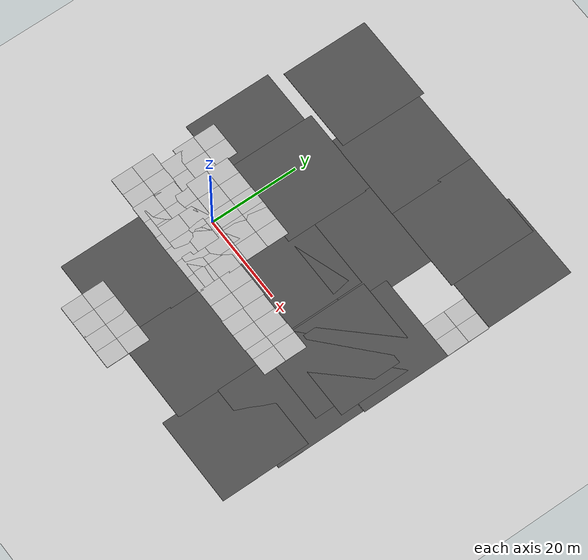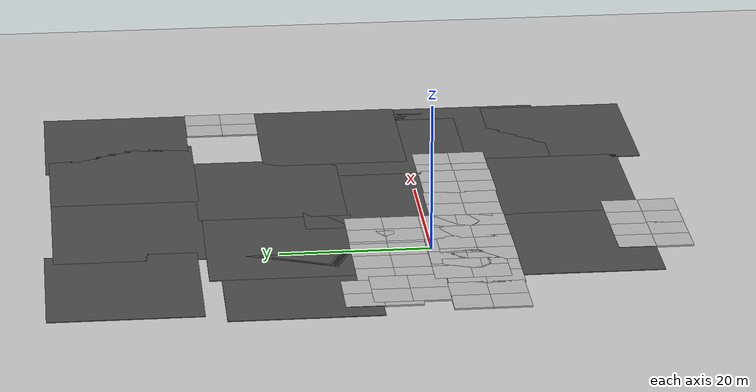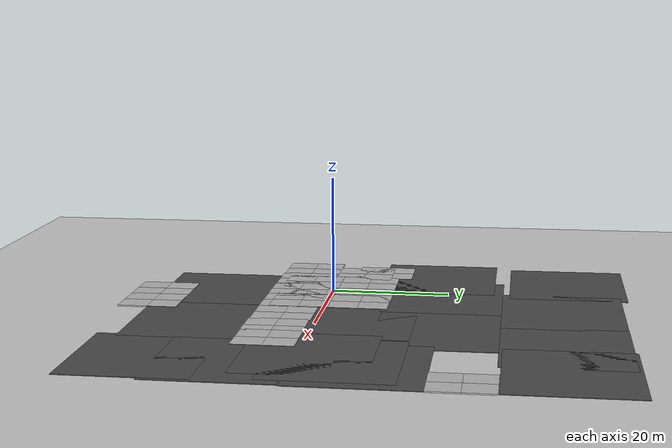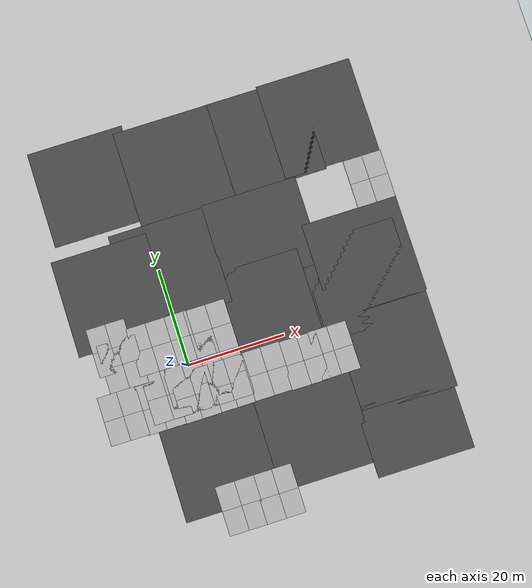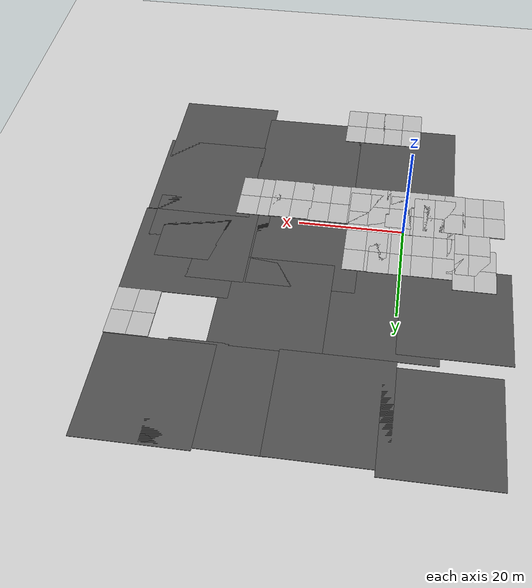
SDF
<sdf version="1.6">
 <world name="default">
  <model name="ground_plane">
   <static>1</static>
   <link name="link">
    <collision name="collision">
     <geometry><plane><normal>0 0 1</normal><size>100 100</size></plane></geometry>
     <surface><friction><ode><mu>100</mu><mu2>50</mu2></ode></friction></surface>
    </collision>
    <visual name="visual">
     <cast_shadows>0</cast_shadows>
     <geometry><plane><normal>0 0 1</normal><size>100 100</size></plane></geometry>
     <material>
      <script><uri>file://media/materials/scripts/gazebo.material</uri><name>Gazebo/Grey</name></script>
     </material>
    </visual>
   </link>
  </model>
  <model name="mud_box">
   <static>1</static>
   <link name="link">
    <collision name="collision"><geometry><box><size>8 10 0.2</size></box></geometry></collision>
    <visual name="visual_1">
     <pose>-2 2.5 0 0 -0 0</pose>
     <cast_shadows>0</cast_shadows>
     <geometry><box><size>4 5 0.2</size></box></geometry>
     <material>
      <script>
       <uri>model://mud_box/materials/scripts</uri>
       <uri>model://mud_box/materials/textures</uri>
       <name>vrc/mud</name>
      </script>
     </material>
    </visual>
    <visual name="visual_2">
     <pose>2 2.5 0 0 -0 0</pose>
     <cast_shadows>0</cast_shadows>
     <geometry><box><size>4 5 0.2</size></box></geometry>
     <material>
      <script>
       <uri>model://mud_box/materials/scripts</uri>
       <uri>model://mud_box/materials/textures</uri>
       <name>vrc/mud</name>
      </script>
     </material>
    </visual>
    <visual name="visual_3">
     <pose>2 -2.5 0 0 -0 0</pose>
     <cast_shadows>0</cast_shadows>
     <geometry><box><size>4 5 0.2</size></box></geometry>
     <material>
      <script>
       <uri>model://mud_box/materials/scripts</uri>
       <uri>model://mud_box/materials/textures</uri>
       <name>vrc/mud</name>
      </script>
     </material>
    </visual>
    <visual name="visual_4">
     <pose>-2 -2.5 0 0 -0 0</pose>
     <cast_shadows>0</cast_shadows>
     <geometry><box><size>4 5 0.2</size></box></geometry>
     <material>
      <script>
       <uri>model://mud_box/materials/scripts</uri>
       <uri>model://mud_box/materials/textures</uri>
       <name>vrc/mud</name>
      </script>
     </material>
    </visual>
   </link>
   <pose>6.67494 -4.37805 0 0 -0 0</pose>
  </model>
  <model name="mud_box_0">
   <static>1</static>
   <link name="link">
    <collision name="collision"><geometry><box><size>8 10 0.2</size></box></geometry></collision>
    <visual name="visual_1">
     <pose>-2 2.5 0 0 -0 0</pose>
     <cast_shadows>0</cast_shadows>
     <geometry><box><size>4 5 0.2</size></box></geometry>
     <material>
      <script>
       <uri>model://mud_box/materials/scripts</uri>
       <uri>model://mud_box/materials/textures</uri>
       <name>vrc/mud</name>
      </script>
     </material>
    </visual>
    <visual name="visual_2">
     <pose>2 2.5 0 0 -0 0</pose>
     <cast_shadows>0</cast_shadows>
     <geometry><box><size>4 5 0.2</size></box></geometry>
     <material>
      <script>
       <uri>model://mud_box/materials/scripts</uri>
       <uri>model://mud_box/materials/textures</uri>
       <name>vrc/mud</name>
      </script>
     </material>
    </visual>
    <visual name="visual_3">
     <pose>2 -2.5 0 0 -0 0</pose>
     <cast_shadows>0</cast_shadows>
     <geometry><box><size>4 5 0.2</size></box></geometry>
     <material>
      <script>
       <uri>model://mud_box/materials/scripts</uri>
       <uri>model://mud_box/materials/textures</uri>
       <name>vrc/mud</name>
      </script>
     </material>
    </visual>
    <visual name="visual_4">
     <pose>-2 -2.5 0 0 -0 0</pose>
     <cast_shadows>0</cast_shadows>
     <geometry><box><size>4 5 0.2</size></box></geometry>
     <material>
      <script>
       <uri>model://mud_box/materials/scripts</uri>
       <uri>model://mud_box/materials/textures</uri>
       <name>vrc/mud</name>
      </script>
     </material>
    </visual>
   </link>
   <pose>-1.31413 -4.41998 0 0 -0 0</pose>
  </model>
  <model name="mud_box_1">
   <static>1</static>
   <link name="link">
    <collision name="collision"><geometry><box><size>8 10 0.2</size></box></geometry></collision>
    <visual name="visual_1">
     <pose>-2 2.5 0 0 -0 0</pose>
     <cast_shadows>0</cast_shadows>
     <geometry><box><size>4 5 0.2</size></box></geometry>
     <material>
      <script>
       <uri>model://mud_box/materials/scripts</uri>
       <uri>model://mud_box/materials/textures</uri>
       <name>vrc/mud</name>
      </script>
     </material>
    </visual>
    <visual name="visual_2">
     <pose>2 2.5 0 0 -0 0</pose>
     <cast_shadows>0</cast_shadows>
     <geometry><box><size>4 5 0.2</size></box></geometry>
     <material>
      <script>
       <uri>model://mud_box/materials/scripts</uri>
       <uri>model://mud_box/materials/textures</uri>
       <name>vrc/mud</name>
      </script>
     </material>
    </visual>
    <visual name="visual_3">
     <pose>2 -2.5 0 0 -0 0</pose>
     <cast_shadows>0</cast_shadows>
     <geometry><box><size>4 5 0.2</size></box></geometry>
     <material>
      <script>
       <uri>model://mud_box/materials/scripts</uri>
       <uri>model://mud_box/materials/textures</uri>
       <name>vrc/mud</name>
      </script>
     </material>
    </visual>
    <visual name="visual_4">
     <pose>-2 -2.5 0 0 -0 0</pose>
     <cast_shadows>0</cast_shadows>
     <geometry><box><size>4 5 0.2</size></box></geometry>
     <material>
      <script>
       <uri>model://mud_box/materials/scripts</uri>
       <uri>model://mud_box/materials/textures</uri>
       <name>vrc/mud</name>
      </script>
     </material>
    </visual>
   </link>
   <pose>-5.88435 -4.38735 0 0 -0 0</pose>
  </model>
  <model name="mud_box_2">
   <static>1</static>
   <link name="link">
    <collision name="collision"><geometry><box><size>8 10 0.2</size></box></geometry></collision>
    <visual name="visual_1">
     <pose>-2 2.5 0 0 -0 0</pose>
     <cast_shadows>0</cast_shadows>
     <geometry><box><size>4 5 0.2</size></box></geometry>
     <material>
      <script>
       <uri>model://mud_box/materials/scripts</uri>
       <uri>model://mud_box/materials/textures</uri>
       <name>vrc/mud</name>
      </script>
     </material>
    </visual>
    <visual name="visual_2">
     <pose>2 2.5 0 0 -0 0</pose>
     <cast_shadows>0</cast_shadows>
     <geometry><box><size>4 5 0.2</size></box></geometry>
     <material>
      <script>
       <uri>model://mud_box/materials/scripts</uri>
       <uri>model://mud_box/materials/textures</uri>
       <name>vrc/mud</name>
      </script>
     </material>
    </visual>
    <visual name="visual_3">
     <pose>2 -2.5 0 0 -0 0</pose>
     <cast_shadows>0</cast_shadows>
     <geometry><box><size>4 5 0.2</size></box></geometry>
     <material>
      <script>
       <uri>model://mud_box/materials/scripts</uri>
       <uri>model://mud_box/materials/textures</uri>
       <name>vrc/mud</name>
      </script>
     </material>
    </visual>
    <visual name="visual_4">
     <pose>-2 -2.5 0 0 -0 0</pose>
     <cast_shadows>0</cast_shadows>
     <geometry><box><size>4 5 0.2</size></box></geometry>
     <material>
      <script>
       <uri>model://mud_box/materials/scripts</uri>
       <uri>model://mud_box/materials/textures</uri>
       <name>vrc/mud</name>
      </script>
     </material>
    </visual>
   </link>
   <pose>-5.85929 5.62111 0 0 -0 0</pose>
  </model>
  <model name="mud_box_3">
   <static>1</static>
   <link name="link">
    <collision name="collision"><geometry><box><size>8 10 0.2</size></box></geometry></collision>
    <visual name="visual_1">
     <pose>-2 2.5 0 0 -0 0</pose>
     <cast_shadows>0</cast_shadows>
     <geometry><box><size>4 5 0.2</size></box></geometry>
     <material>
      <script>
       <uri>model://mud_box/materials/scripts</uri>
       <uri>model://mud_box/materials/textures</uri>
       <name>vrc/mud</name>
      </script>
     </material>
    </visual>
    <visual name="visual_2">
     <pose>2 2.5 0 0 -0 0</pose>
     <cast_shadows>0</cast_shadows>
     <geometry><box><size>4 5 0.2</size></box></geometry>
     <material>
      <script>
       <uri>model://mud_box/materials/scripts</uri>
       <uri>model://mud_box/materials/textures</uri>
       <name>vrc/mud</name>
      </script>
     </material>
    </visual>
    <visual name="visual_3">
     <pose>2 -2.5 0 0 -0 0</pose>
     <cast_shadows>0</cast_shadows>
     <geometry><box><size>4 5 0.2</size></box></geometry>
     <material>
      <script>
       <uri>model://mud_box/materials/scripts</uri>
       <uri>model://mud_box/materials/textures</uri>
       <name>vrc/mud</name>
      </script>
     </material>
    </visual>
    <visual name="visual_4">
     <pose>-2 -2.5 0 0 -0 0</pose>
     <cast_shadows>0</cast_shadows>
     <geometry><box><size>4 5 0.2</size></box></geometry>
     <material>
      <script>
       <uri>model://mud_box/materials/scripts</uri>
       <uri>model://mud_box/materials/textures</uri>
       <name>vrc/mud</name>
      </script>
     </material>
    </visual>
   </link>
   <pose>2.11138 5.6492 0 0 -0 0</pose>
  </model>
  <model name="mud_box_4">
   <static>1</static>
   <link name="link">
    <collision name="collision"><geometry><box><size>8 10 0.2</size></box></geometry></collision>
    <visual name="visual_1">
     <pose>-2 2.5 0 0 -0 0</pose>
     <cast_shadows>0</cast_shadows>
     <geometry><box><size>4 5 0.2</size></box></geometry>
     <material>
      <script>
       <uri>model://mud_box/materials/scripts</uri>
       <uri>model://mud_box/materials/textures</uri>
       <name>vrc/mud</name>
      </script>
     </material>
    </visual>
    <visual name="visual_2">
     <pose>2 2.5 0 0 -0 0</pose>
     <cast_shadows>0</cast_shadows>
     <geometry><box><size>4 5 0.2</size></box></geometry>
     <material>
      <script>
       <uri>model://mud_box/materials/scripts</uri>
       <uri>model://mud_box/materials/textures</uri>
       <name>vrc/mud</name>
      </script>
     </material>
    </visual>
    <visual name="visual_3">
     <pose>2 -2.5 0 0 -0 0</pose>
     <cast_shadows>0</cast_shadows>
     <geometry><box><size>4 5 0.2</size></box></geometry>
     <material>
      <script>
       <uri>model://mud_box/materials/scripts</uri>
       <uri>model://mud_box/materials/textures</uri>
       <name>vrc/mud</name>
      </script>
     </material>
    </visual>
    <visual name="visual_4">
     <pose>-2 -2.5 0 0 -0 0</pose>
     <cast_shadows>0</cast_shadows>
     <geometry><box><size>4 5 0.2</size></box></geometry>
     <material>
      <script>
       <uri>model://mud_box/materials/scripts</uri>
       <uri>model://mud_box/materials/textures</uri>
       <name>vrc/mud</name>
      </script>
     </material>
    </visual>
   </link>
   <pose>6.7262 5.5782 0 0 -0 0</pose>
  </model>
  <model name="asphalt_plane">
   <static>1</static>
   <link name="link">
    <collision name="collision"><geometry><box><size>20 20 0.1</size></box></geometry></collision>
    <visual name="visual">
     <cast_shadows>0</cast_shadows>
     <geometry><box><size>20 20 0.1</size></box></geometry>
     <material>
      <script>
       <uri>model://asphalt_plane/materials/scripts</uri>
       <uri>model://asphalt_plane/materials/textures</uri>
       <name>vrc/asphalt</name>
      </script>
     </material>
    </visual>
   </link>
   <pose>0.46329 -19.4958 0 0 -0 0</pose>
  </model>
  <model name="asphalt_plane_1">
   <static>1</static>
   <link name="link">
    <collision name="collision"><geometry><box><size>20 20 0.1</size></box></geometry></collision>
    <visual name="visual">
     <cast_shadows>0</cast_shadows>
     <geometry><box><size>20 20 0.1</size></box></geometry>
     <material>
      <script>
       <uri>model://asphalt_plane/materials/scripts</uri>
       <uri>model://asphalt_plane/materials/textures</uri>
       <name>vrc/asphalt</name>
      </script>
     </material>
    </visual>
   </link>
   <pose>20.1586 -19.4171 0 0 -0 0</pose>
  </model>
  <model name="mud_box_2_clone_0">
   <static>1</static>
   <link name="link">
    <collision name="collision"><geometry><box><size>8 10 0.2</size></box></geometry></collision>
    <visual name="visual_1">
     <pose>-2 2.5 0 0 -0 0</pose>
     <cast_shadows>0</cast_shadows>
     <geometry><box><size>4 5 0.2</size></box></geometry>
     <material>
      <script>
       <uri>model://mud_box/materials/scripts</uri>
       <uri>model://mud_box/materials/textures</uri>
       <name>vrc/mud</name>
      </script>
     </material>
    </visual>
    <visual name="visual_2">
     <pose>2 2.5 0 0 -0 0</pose>
     <cast_shadows>0</cast_shadows>
     <geometry><box><size>4 5 0.2</size></box></geometry>
     <material>
      <script>
       <uri>model://mud_box/materials/scripts</uri>
       <uri>model://mud_box/materials/textures</uri>
       <name>vrc/mud</name>
      </script>
     </material>
    </visual>
    <visual name="visual_3">
     <pose>2 -2.5 0 0 -0 0</pose>
     <cast_shadows>0</cast_shadows>
     <geometry><box><size>4 5 0.2</size></box></geometry>
     <material>
      <script>
       <uri>model://mud_box/materials/scripts</uri>
       <uri>model://mud_box/materials/textures</uri>
       <name>vrc/mud</name>
      </script>
     </material>
    </visual>
    <visual name="visual_4">
     <pose>-2 -2.5 0 0 -0 0</pose>
     <cast_shadows>0</cast_shadows>
     <geometry><box><size>4 5 0.2</size></box></geometry>
     <material>
      <script>
       <uri>model://mud_box/materials/scripts</uri>
       <uri>model://mud_box/materials/textures</uri>
       <name>vrc/mud</name>
      </script>
     </material>
    </visual>
   </link>
   <pose>1.80119 -29.5516 0 0 -0 0</pose>
  </model>
  <model name="mud_box_2_clone_1">
   <static>1</static>
   <link name="link">
    <collision name="collision"><geometry><box><size>8 10 0.2</size></box></geometry></collision>
    <visual name="visual_1">
     <pose>-2 2.5 0 0 -0 0</pose>
     <cast_shadows>0</cast_shadows>
     <geometry><box><size>4 5 0.2</size></box></geometry>
     <material>
      <script>
       <uri>model://mud_box/materials/scripts</uri>
       <uri>model://mud_box/materials/textures</uri>
       <name>vrc/mud</name>
      </script>
     </material>
    </visual>
    <visual name="visual_2">
     <pose>2 2.5 0 0 -0 0</pose>
     <cast_shadows>0</cast_shadows>
     <geometry><box><size>4 5 0.2</size></box></geometry>
     <material>
      <script>
       <uri>model://mud_box/materials/scripts</uri>
       <uri>model://mud_box/materials/textures</uri>
       <name>vrc/mud</name>
      </script>
     </material>
    </visual>
    <visual name="visual_3">
     <pose>2 -2.5 0 0 -0 0</pose>
     <cast_shadows>0</cast_shadows>
     <geometry><box><size>4 5 0.2</size></box></geometry>
     <material>
      <script>
       <uri>model://mud_box/materials/scripts</uri>
       <uri>model://mud_box/materials/textures</uri>
       <name>vrc/mud</name>
      </script>
     </material>
    </visual>
    <visual name="visual_4">
     <pose>-2 -2.5 0 0 -0 0</pose>
     <cast_shadows>0</cast_shadows>
     <geometry><box><size>4 5 0.2</size></box></geometry>
     <material>
      <script>
       <uri>model://mud_box/materials/scripts</uri>
       <uri>model://mud_box/materials/textures</uri>
       <name>vrc/mud</name>
      </script>
     </material>
    </visual>
   </link>
   <pose>9.52834 -29.56 0 0 -0 0</pose>
  </model>
  <model name="mud_box_2_clone_9">
   <static>1</static>
   <link name="link">
    <collision name="collision"><geometry><box><size>8 10 0.2</size></box></geometry></collision>
    <visual name="visual_1">
     <pose>-2 2.5 0 0 -0 0</pose>
     <cast_shadows>0</cast_shadows>
     <geometry><box><size>4 5 0.2</size></box></geometry>
     <material>
      <script>
       <uri>model://mud_box/materials/scripts</uri>
       <uri>model://mud_box/materials/textures</uri>
       <name>vrc/mud</name>
      </script>
     </material>
    </visual>
    <visual name="visual_2">
     <pose>2 2.5 0 0 -0 0</pose>
     <cast_shadows>0</cast_shadows>
     <geometry><box><size>4 5 0.2</size></box></geometry>
     <material>
      <script>
       <uri>model://mud_box/materials/scripts</uri>
       <uri>model://mud_box/materials/textures</uri>
       <name>vrc/mud</name>
      </script>
     </material>
    </visual>
    <visual name="visual_3">
     <pose>2 -2.5 0 0 -0 0</pose>
     <cast_shadows>0</cast_shadows>
     <geometry><box><size>4 5 0.2</size></box></geometry>
     <material>
      <script>
       <uri>model://mud_box/materials/scripts</uri>
       <uri>model://mud_box/materials/textures</uri>
       <name>vrc/mud</name>
      </script>
     </material>
    </visual>
    <visual name="visual_4">
     <pose>-2 -2.5 0 0 -0 0</pose>
     <cast_shadows>0</cast_shadows>
     <geometry><box><size>4 5 0.2</size></box></geometry>
     <material>
      <script>
       <uri>model://mud_box/materials/scripts</uri>
       <uri>model://mud_box/materials/textures</uri>
       <name>vrc/mud</name>
      </script>
     </material>
    </visual>
   </link>
   <pose>6.94055 -5.96852 0 0 -0 0</pose>
  </model>
  <model name="mud_box_2_clone_10">
   <static>1</static>
   <link name="link">
    <collision name="collision"><geometry><box><size>8 10 0.2</size></box></geometry></collision>
    <visual name="visual_1">
     <pose>-2 2.5 0 0 -0 0</pose>
     <cast_shadows>0</cast_shadows>
     <geometry><box><size>4 5 0.2</size></box></geometry>
     <material>
      <script>
       <uri>model://mud_box/materials/scripts</uri>
       <uri>model://mud_box/materials/textures</uri>
       <name>vrc/mud</name>
      </script>
     </material>
    </visual>
    <visual name="visual_2">
     <pose>2 2.5 0 0 -0 0</pose>
     <cast_shadows>0</cast_shadows>
     <geometry><box><size>4 5 0.2</size></box></geometry>
     <material>
      <script>
       <uri>model://mud_box/materials/scripts</uri>
       <uri>model://mud_box/materials/textures</uri>
       <name>vrc/mud</name>
      </script>
     </material>
    </visual>
    <visual name="visual_3">
     <pose>2 -2.5 0 0 -0 0</pose>
     <cast_shadows>0</cast_shadows>
     <geometry><box><size>4 5 0.2</size></box></geometry>
     <material>
      <script>
       <uri>model://mud_box/materials/scripts</uri>
       <uri>model://mud_box/materials/textures</uri>
       <name>vrc/mud</name>
      </script>
     </material>
    </visual>
    <visual name="visual_4">
     <pose>-2 -2.5 0 0 -0 0</pose>
     <cast_shadows>0</cast_shadows>
     <geometry><box><size>4 5 0.2</size></box></geometry>
     <material>
      <script>
       <uri>model://mud_box/materials/scripts</uri>
       <uri>model://mud_box/materials/textures</uri>
       <name>vrc/mud</name>
      </script>
     </material>
    </visual>
   </link>
   <pose>-0.426662 -6.00251 0 0 -0 0</pose>
  </model>
  <model name="mud_box_2_clone_11">
   <static>1</static>
   <link name="link">
    <collision name="collision"><geometry><box><size>8 10 0.2</size></box></geometry></collision>
    <visual name="visual_1">
     <pose>-2 2.5 0 0 -0 0</pose>
     <cast_shadows>0</cast_shadows>
     <geometry><box><size>4 5 0.2</size></box></geometry>
     <material>
      <script>
       <uri>model://mud_box/materials/scripts</uri>
       <uri>model://mud_box/materials/textures</uri>
       <name>vrc/mud</name>
      </script>
     </material>
    </visual>
    <visual name="visual_2">
     <pose>2 2.5 0 0 -0 0</pose>
     <cast_shadows>0</cast_shadows>
     <geometry><box><size>4 5 0.2</size></box></geometry>
     <material>
      <script>
       <uri>model://mud_box/materials/scripts</uri>
       <uri>model://mud_box/materials/textures</uri>
       <name>vrc/mud</name>
      </script>
     </material>
    </visual>
    <visual name="visual_3">
     <pose>2 -2.5 0 0 -0 0</pose>
     <cast_shadows>0</cast_shadows>
     <geometry><box><size>4 5 0.2</size></box></geometry>
     <material>
      <script>
       <uri>model://mud_box/materials/scripts</uri>
       <uri>model://mud_box/materials/textures</uri>
       <name>vrc/mud</name>
      </script>
     </material>
    </visual>
    <visual name="visual_4">
     <pose>-2 -2.5 0 0 -0 0</pose>
     <cast_shadows>0</cast_shadows>
     <geometry><box><size>4 5 0.2</size></box></geometry>
     <material>
      <script>
       <uri>model://mud_box/materials/scripts</uri>
       <uri>model://mud_box/materials/textures</uri>
       <name>vrc/mud</name>
      </script>
     </material>
    </visual>
   </link>
   <pose>-7.76973 -5.92616 0 0 -0 0</pose>
  </model>
  <model name="mud_box_2_clone_12">
   <static>1</static>
   <link name="link">
    <collision name="collision"><geometry><box><size>8 10 0.2</size></box></geometry></collision>
    <visual name="visual_1">
     <pose>-2 2.5 0 0 -0 0</pose>
     <cast_shadows>0</cast_shadows>
     <geometry><box><size>4 5 0.2</size></box></geometry>
     <material>
      <script>
       <uri>model://mud_box/materials/scripts</uri>
       <uri>model://mud_box/materials/textures</uri>
       <name>vrc/mud</name>
      </script>
     </material>
    </visual>
    <visual name="visual_2">
     <pose>2 2.5 0 0 -0 0</pose>
     <cast_shadows>0</cast_shadows>
     <geometry><box><size>4 5 0.2</size></box></geometry>
     <material>
      <script>
       <uri>model://mud_box/materials/scripts</uri>
       <uri>model://mud_box/materials/textures</uri>
       <name>vrc/mud</name>
      </script>
     </material>
    </visual>
    <visual name="visual_3">
     <pose>2 -2.5 0 0 -0 0</pose>
     <cast_shadows>0</cast_shadows>
     <geometry><box><size>4 5 0.2</size></box></geometry>
     <material>
      <script>
       <uri>model://mud_box/materials/scripts</uri>
       <uri>model://mud_box/materials/textures</uri>
       <name>vrc/mud</name>
      </script>
     </material>
    </visual>
    <visual name="visual_4">
     <pose>-2 -2.5 0 0 -0 0</pose>
     <cast_shadows>0</cast_shadows>
     <geometry><box><size>4 5 0.2</size></box></geometry>
     <material>
      <script>
       <uri>model://mud_box/materials/scripts</uri>
       <uri>model://mud_box/materials/textures</uri>
       <name>vrc/mud</name>
      </script>
     </material>
    </visual>
   </link>
   <pose>14.6148 -5.9147 0 0 -0 0</pose>
  </model>
  <model name="mud_box_2_clone_13">
   <static>1</static>
   <link name="link">
    <collision name="collision"><geometry><box><size>8 10 0.2</size></box></geometry></collision>
    <visual name="visual_1">
     <pose>-2 2.5 0 0 -0 0</pose>
     <cast_shadows>0</cast_shadows>
     <geometry><box><size>4 5 0.2</size></box></geometry>
     <material>
      <script>
       <uri>model://mud_box/materials/scripts</uri>
       <uri>model://mud_box/materials/textures</uri>
       <name>vrc/mud</name>
      </script>
     </material>
    </visual>
    <visual name="visual_2">
     <pose>2 2.5 0 0 -0 0</pose>
     <cast_shadows>0</cast_shadows>
     <geometry><box><size>4 5 0.2</size></box></geometry>
     <material>
      <script>
       <uri>model://mud_box/materials/scripts</uri>
       <uri>model://mud_box/materials/textures</uri>
       <name>vrc/mud</name>
      </script>
     </material>
    </visual>
    <visual name="visual_3">
     <pose>2 -2.5 0 0 -0 0</pose>
     <cast_shadows>0</cast_shadows>
     <geometry><box><size>4 5 0.2</size></box></geometry>
     <material>
      <script>
       <uri>model://mud_box/materials/scripts</uri>
       <uri>model://mud_box/materials/textures</uri>
       <name>vrc/mud</name>
      </script>
     </material>
    </visual>
    <visual name="visual_4">
     <pose>-2 -2.5 0 0 -0 0</pose>
     <cast_shadows>0</cast_shadows>
     <geometry><box><size>4 5 0.2</size></box></geometry>
     <material>
      <script>
       <uri>model://mud_box/materials/scripts</uri>
       <uri>model://mud_box/materials/textures</uri>
       <name>vrc/mud</name>
      </script>
     </material>
    </visual>
   </link>
   <pose>22.2618 -6.07135 0 0 -0 0</pose>
  </model>
  <model name="mud_box_2_clone_14">
   <static>1</static>
   <link name="link">
    <collision name="collision"><geometry><box><size>8 10 0.2</size></box></geometry></collision>
    <visual name="visual_1">
     <pose>-2 2.5 0 0 -0 0</pose>
     <cast_shadows>0</cast_shadows>
     <geometry><box><size>4 5 0.2</size></box></geometry>
     <material>
      <script>
       <uri>model://mud_box/materials/scripts</uri>
       <uri>model://mud_box/materials/textures</uri>
       <name>vrc/mud</name>
      </script>
     </material>
    </visual>
    <visual name="visual_2">
     <pose>2 2.5 0 0 -0 0</pose>
     <cast_shadows>0</cast_shadows>
     <geometry><box><size>4 5 0.2</size></box></geometry>
     <material>
      <script>
       <uri>model://mud_box/materials/scripts</uri>
       <uri>model://mud_box/materials/textures</uri>
       <name>vrc/mud</name>
      </script>
     </material>
    </visual>
    <visual name="visual_3">
     <pose>2 -2.5 0 0 -0 0</pose>
     <cast_shadows>0</cast_shadows>
     <geometry><box><size>4 5 0.2</size></box></geometry>
     <material>
      <script>
       <uri>model://mud_box/materials/scripts</uri>
       <uri>model://mud_box/materials/textures</uri>
       <name>vrc/mud</name>
      </script>
     </material>
    </visual>
    <visual name="visual_4">
     <pose>-2 -2.5 0 0 -0 0</pose>
     <cast_shadows>0</cast_shadows>
     <geometry><box><size>4 5 0.2</size></box></geometry>
     <material>
      <script>
       <uri>model://mud_box/materials/scripts</uri>
       <uri>model://mud_box/materials/textures</uri>
       <name>vrc/mud</name>
      </script>
     </material>
    </visual>
   </link>
   <pose>28.6266 -5.9653 0 0 -0 0</pose>
  </model>
  <model name="mud_box_2_clone_15">
   <static>1</static>
   <link name="link">
    <collision name="collision"><geometry><box><size>8 10 0.2</size></box></geometry></collision>
    <visual name="visual_1">
     <pose>-2 2.5 0 0 -0 0</pose>
     <cast_shadows>0</cast_shadows>
     <geometry><box><size>4 5 0.2</size></box></geometry>
     <material>
      <script>
       <uri>model://mud_box/materials/scripts</uri>
       <uri>model://mud_box/materials/textures</uri>
       <name>vrc/mud</name>
      </script>
     </material>
    </visual>
    <visual name="visual_2">
     <pose>2 2.5 0 0 -0 0</pose>
     <cast_shadows>0</cast_shadows>
     <geometry><box><size>4 5 0.2</size></box></geometry>
     <material>
      <script>
       <uri>model://mud_box/materials/scripts</uri>
       <uri>model://mud_box/materials/textures</uri>
       <name>vrc/mud</name>
      </script>
     </material>
    </visual>
    <visual name="visual_3">
     <pose>2 -2.5 0 0 -0 0</pose>
     <cast_shadows>0</cast_shadows>
     <geometry><box><size>4 5 0.2</size></box></geometry>
     <material>
      <script>
       <uri>model://mud_box/materials/scripts</uri>
       <uri>model://mud_box/materials/textures</uri>
       <name>vrc/mud</name>
      </script>
     </material>
    </visual>
    <visual name="visual_4">
     <pose>-2 -2.5 0 0 -0 0</pose>
     <cast_shadows>0</cast_shadows>
     <geometry><box><size>4 5 0.2</size></box></geometry>
     <material>
      <script>
       <uri>model://mud_box/materials/scripts</uri>
       <uri>model://mud_box/materials/textures</uri>
       <name>vrc/mud</name>
      </script>
     </material>
    </visual>
   </link>
   <pose>-15.3121 -5.76558 0 0 -0 0</pose>
  </model>
  <model name="asphalt_plane_1_clone">
   <static>1</static>
   <link name="link">
    <collision name="collision"><geometry><box><size>20 20 0.1</size></box></geometry></collision>
    <visual name="visual">
     <cast_shadows>0</cast_shadows>
     <geometry><box><size>20 20 0.1</size></box></geometry>
     <material>
      <script>
       <uri>model://asphalt_plane/materials/scripts</uri>
       <uri>model://asphalt_plane/materials/textures</uri>
       <name>vrc/asphalt</name>
      </script>
     </material>
    </visual>
   </link>
   <pose>39.2415 -22.6402 0 0 -0 0</pose>
  </model>
  <model name="asphalt_plane_1_clone_0">
   <static>1</static>
   <link name="link">
    <collision name="collision"><geometry><box><size>20 20 0.1</size></box></geometry></collision>
    <visual name="visual">
     <cast_shadows>0</cast_shadows>
     <geometry><box><size>20 20 0.1</size></box></geometry>
     <material>
      <script>
       <uri>model://asphalt_plane/materials/scripts</uri>
       <uri>model://asphalt_plane/materials/textures</uri>
       <name>vrc/asphalt</name>
      </script>
     </material>
    </visual>
   </link>
   <pose>39.9143 -10.1366 0 0 -0 0</pose>
  </model>
  <model name="mud_box_5_clone_4_clone_0">
   <static>1</static>
   <link name="link">
    <collision name="collision"><geometry><box><size>8 10 0.2</size></box></geometry></collision>
    <visual name="visual_1">
     <pose>-2 2.5 0 0 -0 0</pose>
     <cast_shadows>0</cast_shadows>
     <geometry><box><size>4 5 0.2</size></box></geometry>
     <material>
      <script>
       <uri>model://mud_box/materials/scripts</uri>
       <uri>model://mud_box/materials/textures</uri>
       <name>vrc/mud</name>
      </script>
     </material>
    </visual>
    <visual name="visual_2">
     <pose>2 2.5 0 0 -0 0</pose>
     <cast_shadows>0</cast_shadows>
     <geometry><box><size>4 5 0.2</size></box></geometry>
     <material>
      <script>
       <uri>model://mud_box/materials/scripts</uri>
       <uri>model://mud_box/materials/textures</uri>
       <name>vrc/mud</name>
      </script>
     </material>
    </visual>
    <visual name="visual_3">
     <pose>2 -2.5 0 0 -0 0</pose>
     <cast_shadows>0</cast_shadows>
     <geometry><box><size>4 5 0.2</size></box></geometry>
     <material>
      <script>
       <uri>model://mud_box/materials/scripts</uri>
       <uri>model://mud_box/materials/textures</uri>
       <name>vrc/mud</name>
      </script>
     </material>
    </visual>
    <visual name="visual_4">
     <pose>-2 -2.5 0 0 -0 0</pose>
     <cast_shadows>0</cast_shadows>
     <geometry><box><size>4 5 0.2</size></box></geometry>
     <material>
      <script>
       <uri>model://mud_box/materials/scripts</uri>
       <uri>model://mud_box/materials/textures</uri>
       <name>vrc/mud</name>
      </script>
     </material>
    </visual>
   </link>
   <pose>-12.4812 4.1478 0 0 -0 0</pose>
  </model>
  <model name="mud_box_5_clone_4_clone_1">
   <static>1</static>
   <link name="link">
    <collision name="collision"><geometry><box><size>8 10 0.2</size></box></geometry></collision>
    <visual name="visual_1">
     <pose>-2 2.5 0 0 -0 0</pose>
     <cast_shadows>0</cast_shadows>
     <geometry><box><size>4 5 0.2</size></box></geometry>
     <material>
      <script>
       <uri>model://mud_box/materials/scripts</uri>
       <uri>model://mud_box/materials/textures</uri>
       <name>vrc/mud</name>
      </script>
     </material>
    </visual>
    <visual name="visual_2">
     <pose>2 2.5 0 0 -0 0</pose>
     <cast_shadows>0</cast_shadows>
     <geometry><box><size>4 5 0.2</size></box></geometry>
     <material>
      <script>
       <uri>model://mud_box/materials/scripts</uri>
       <uri>model://mud_box/materials/textures</uri>
       <name>vrc/mud</name>
      </script>
     </material>
    </visual>
    <visual name="visual_3">
     <pose>2 -2.5 0 0 -0 0</pose>
     <cast_shadows>0</cast_shadows>
     <geometry><box><size>4 5 0.2</size></box></geometry>
     <material>
      <script>
       <uri>model://mud_box/materials/scripts</uri>
       <uri>model://mud_box/materials/textures</uri>
       <name>vrc/mud</name>
      </script>
     </material>
    </visual>
    <visual name="visual_4">
     <pose>-2 -2.5 0 0 -0 0</pose>
     <cast_shadows>0</cast_shadows>
     <geometry><box><size>4 5 0.2</size></box></geometry>
     <material>
      <script>
       <uri>model://mud_box/materials/scripts</uri>
       <uri>model://mud_box/materials/textures</uri>
       <name>vrc/mud</name>
      </script>
     </material>
    </visual>
   </link>
   <pose>-13.5644 7.84833 0 0 -0 0</pose>
  </model>
  <model name="asphalt_plane_0_clone_2">
   <static>1</static>
   <link name="link">
    <collision name="collision"><geometry><box><size>20 20 0.1</size></box></geometry></collision>
    <visual name="visual">
     <cast_shadows>0</cast_shadows>
     <geometry><box><size>20 20 0.1</size></box></geometry>
     <material>
      <script>
       <uri>model://asphalt_plane/materials/scripts</uri>
       <uri>model://asphalt_plane/materials/textures</uri>
       <name>vrc/asphalt</name>
      </script>
     </material>
    </visual>
   </link>
   <pose>-10.3279 17.9984 0 0 -0 0</pose>
  </model>
  <model name="asphalt_plane_0_clone_3">
   <static>1</static>
   <link name="link">
    <collision name="collision"><geometry><box><size>20 20 0.1</size></box></geometry></collision>
    <visual name="visual">
     <cast_shadows>0</cast_shadows>
     <geometry><box><size>20 20 0.1</size></box></geometry>
     <material>
      <script>
       <uri>model://asphalt_plane/materials/scripts</uri>
       <uri>model://asphalt_plane/materials/textures</uri>
       <name>vrc/asphalt</name>
      </script>
     </material>
    </visual>
   </link>
   <pose>2.20357 19.5755 0 0 -0 0</pose>
  </model>
  <model name="asphalt_plane_0_clone_4">
   <static>1</static>
   <link name="link">
    <collision name="collision"><geometry><box><size>20 20 0.1</size></box></geometry></collision>
    <visual name="visual">
     <cast_shadows>0</cast_shadows>
     <geometry><box><size>20 20 0.1</size></box></geometry>
     <material>
      <script>
       <uri>model://asphalt_plane/materials/scripts</uri>
       <uri>model://asphalt_plane/materials/textures</uri>
       <name>vrc/asphalt</name>
      </script>
     </material>
    </visual>
   </link>
   <pose>9.27005 39.504 0 0 -0 0</pose>
  </model>
  <model name="asphalt_plane_0_clone_4_clone">
   <static>1</static>
   <link name="link">
    <collision name="collision"><geometry><box><size>20 20 0.1</size></box></geometry></collision>
    <visual name="visual">
     <cast_shadows>0</cast_shadows>
     <geometry><box><size>20 20 0.1</size></box></geometry>
     <material>
      <script>
       <uri>model://asphalt_plane/materials/scripts</uri>
       <uri>model://asphalt_plane/materials/textures</uri>
       <name>vrc/asphalt</name>
      </script>
     </material>
    </visual>
   </link>
   <pose>-8.55929 40.6597 0 0 -0 0</pose>
  </model>
  <model name="asphalt_plane_0_clone_4_clone_0">
   <static>1</static>
   <link name="link">
    <collision name="collision"><geometry><box><size>20 20 0.1</size></box></geometry></collision>
    <visual name="visual">
     <cast_shadows>0</cast_shadows>
     <geometry><box><size>20 20 0.1</size></box></geometry>
     <material>
      <script>
       <uri>model://asphalt_plane/materials/scripts</uri>
       <uri>model://asphalt_plane/materials/textures</uri>
       <name>vrc/asphalt</name>
      </script>
     </material>
    </visual>
   </link>
   <pose>28.6064 39.5385 0 0 -0 0</pose>
  </model>
  <model name="asphalt_plane_0_clone_4_clone_1">
   <static>1</static>
   <link name="link">
    <collision name="collision"><geometry><box><size>20 20 0.1</size></box></geometry></collision>
    <visual name="visual">
     <cast_shadows>0</cast_shadows>
     <geometry><box><size>20 20 0.1</size></box></geometry>
     <material>
      <script>
       <uri>model://asphalt_plane/materials/scripts</uri>
       <uri>model://asphalt_plane/materials/textures</uri>
       <name>vrc/asphalt</name>
      </script>
     </material>
    </visual>
   </link>
   <pose>40.0482 40.0268 0 0 -0 0</pose>
  </model>
  <model name="asphalt_plane_0_clone_4_clone_2">
   <static>1</static>
   <link name="link">
    <collision name="collision"><geometry><box><size>20 20 0.1</size></box></geometry></collision>
    <visual name="visual">
     <cast_shadows>0</cast_shadows>
     <geometry><box><size>20 20 0.1</size></box></geometry>
     <material>
      <script>
       <uri>model://asphalt_plane/materials/scripts</uri>
       <uri>model://asphalt_plane/materials/textures</uri>
       <name>vrc/asphalt</name>
      </script>
     </material>
    </visual>
   </link>
   <pose>21.9794 19.9105 0 0 -0 0</pose>
  </model>
  <model name="asphalt_plane_0_clone_4_clone_3">
   <static>1</static>
   <link name="link">
    <collision name="collision"><geometry><box><size>20 20 0.1</size></box></geometry></collision>
    <visual name="visual">
     <cast_shadows>0</cast_shadows>
     <geometry><box><size>20 20 0.1</size></box></geometry>
     <material>
      <script>
       <uri>model://asphalt_plane/materials/scripts</uri>
       <uri>model://asphalt_plane/materials/textures</uri>
       <name>vrc/asphalt</name>
      </script>
     </material>
    </visual>
   </link>
   <pose>17.7766 5.86985 0 0 -0 0</pose>
  </model>
  <model name="asphalt_plane_0_clone_4_clone_4">
   <static>1</static>
   <link name="link">
    <collision name="collision"><geometry><box><size>20 20 0.1</size></box></geometry></collision>
    <visual name="visual">
     <cast_shadows>0</cast_shadows>
     <geometry><box><size>20 20 0.1</size></box></geometry>
     <material>
      <script>
       <uri>model://asphalt_plane/materials/scripts</uri>
       <uri>model://asphalt_plane/materials/textures</uri>
       <name>vrc/asphalt</name>
      </script>
     </material>
    </visual>
   </link>
   <pose>38.1312 5.99691 0 0 -0 0</pose>
  </model>
  <model name="asphalt_plane_0_clone_4_clone_5">
   <static>1</static>
   <link name="link">
    <collision name="collision"><geometry><box><size>20 20 0.1</size></box></geometry></collision>
    <visual name="visual">
     <cast_shadows>0</cast_shadows>
     <geometry><box><size>20 20 0.1</size></box></geometry>
     <material>
      <script>
       <uri>model://asphalt_plane/materials/scripts</uri>
       <uri>model://asphalt_plane/materials/textures</uri>
       <name>vrc/asphalt</name>
      </script>
     </material>
    </visual>
   </link>
   <pose>40.2026 9.97036 0 0 -0 0</pose>
  </model>
  <model name="asphalt_plane_0_clone_4_clone_6">
   <static>1</static>
   <link name="link">
    <collision name="collision"><geometry><box><size>20 20 0.1</size></box></geometry></collision>
    <visual name="visual">
     <cast_shadows>0</cast_shadows>
     <geometry><box><size>20 20 0.1</size></box></geometry>
     <material>
      <script>
       <uri>model://asphalt_plane/materials/scripts</uri>
       <uri>model://asphalt_plane/materials/textures</uri>
       <name>vrc/asphalt</name>
      </script>
     </material>
    </visual>
   </link>
   <pose>35.805 1.60692 0 0 -0 0</pose>
  </model>
  <model name="mud_box_2_clone_14_clone">
   <static>1</static>
   <link name="link">
    <collision name="collision"><geometry><box><size>8 10 0.2</size></box></geometry></collision>
    <visual name="visual_1">
     <pose>-2 2.5 0 0 -0 0</pose>
     <cast_shadows>0</cast_shadows>
     <geometry><box><size>4 5 0.2</size></box></geometry>
     <material>
      <script>
       <uri>model://mud_box/materials/scripts</uri>
       <uri>model://mud_box/materials/textures</uri>
       <name>vrc/mud</name>
      </script>
     </material>
    </visual>
    <visual name="visual_2">
     <pose>2 2.5 0 0 -0 0</pose>
     <cast_shadows>0</cast_shadows>
     <geometry><box><size>4 5 0.2</size></box></geometry>
     <material>
      <script>
       <uri>model://mud_box/materials/scripts</uri>
       <uri>model://mud_box/materials/textures</uri>
       <name>vrc/mud</name>
      </script>
     </material>
    </visual>
    <visual name="visual_3">
     <pose>2 -2.5 0 0 -0 0</pose>
     <cast_shadows>0</cast_shadows>
     <geometry><box><size>4 5 0.2</size></box></geometry>
     <material>
      <script>
       <uri>model://mud_box/materials/scripts</uri>
       <uri>model://mud_box/materials/textures</uri>
       <name>vrc/mud</name>
      </script>
     </material>
    </visual>
    <visual name="visual_4">
     <pose>-2 -2.5 0 0 -0 0</pose>
     <cast_shadows>0</cast_shadows>
     <geometry><box><size>4 5 0.2</size></box></geometry>
     <material>
      <script>
       <uri>model://mud_box/materials/scripts</uri>
       <uri>model://mud_box/materials/textures</uri>
       <name>vrc/mud</name>
      </script>
     </material>
    </visual>
   </link>
   <pose>46.1929 24.9326 0 0 -0 0</pose>
  </model>
 </world>
</sdf>
